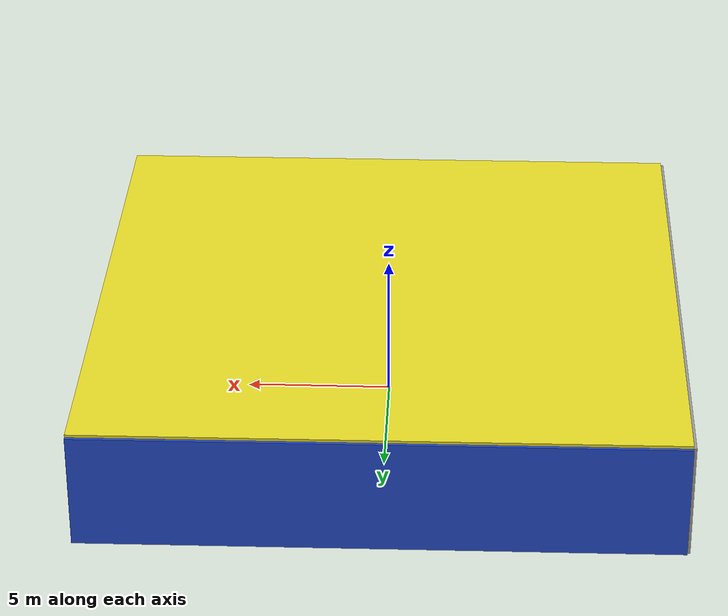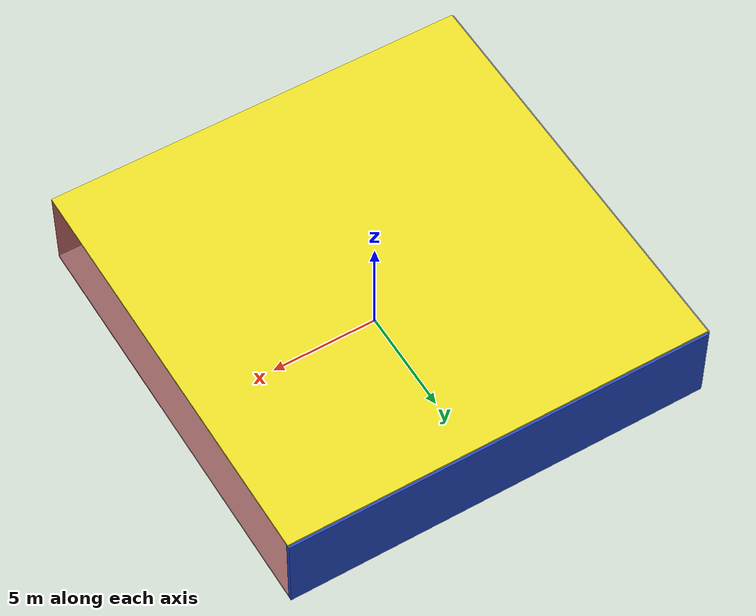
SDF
<sdf version="1.4">
 <world name="default">
  <physics type="ode">
   <max_step_size>0.001</max_step_size>
   <real_time_factor>1</real_time_factor>
   <real_time_update_rate>1000</real_time_update_rate>
   <gravity>0 0 -9.8</gravity>
  </physics>
  <scene><ambient>0.4 0.4 0.4 1</ambient><background>0.7 0.7 0.7 1</background><shadows>1</shadows></scene>
  <model name="Surrounding">
   <static>1</static>
   <link name="Ceiling">
    <collision name="Ceiling_Collision"><geometry><box><size>20 20 0.1</size></box></geometry></collision>
    <visual name="Ceiling_Visual">
     <geometry><box><size>20 20 0.1</size></box></geometry>
     <material>
      <script><uri>file://media/materials/scripts/gazebo.material</uri><name>Gazebo/YellowGlow</name></script>
     </material>
    </visual>
    <pose>0 0 4.05 0 0 0</pose>
   </link>
   <link name="Wall_South">
    <collision name="Wall_South_Collision">
     <geometry><box><size>20 0 4</size></box></geometry>
     <pose>0 0 2 0 -0 0</pose>
    </collision>
    <visual name="Wall_South_Visual">
     <pose>0 0 2 0 -0 0</pose>
     <geometry><box><size>20 0 4</size></box></geometry>
     <material>
      <script><uri>file://media/materials/scripts/gazebo.material</uri><name>Gazebo/LightOff</name></script>
     </material>
    </visual>
    <velocity_decay><linear>0</linear><angular>0</angular></velocity_decay>
    <pose>0 -10 0 0 -0 0</pose>
   </link>
   <link name="Wall_East">
    <collision name="Wall_21_Collision">
     <geometry><box><size>20 0 4</size></box></geometry>
     <pose>0 0 2 0 -0 0</pose>
    </collision>
    <visual name="Wall_21_Visual">
     <pose>0 0 2 0 -0 0</pose>
     <geometry><box><size>20 0 4</size></box></geometry>
     <material>
      <script><uri>file://media/materials/scripts/gazebo.material</uri><name>Gazebo/RedTransparent</name></script>
     </material>
    </visual>
    <velocity_decay><linear>0</linear><angular>0</angular></velocity_decay>
    <pose>10 0 0 0 -0 1.5708</pose>
   </link>
   <link name="Wall_North">
    <collision name="Wall_22_Collision">
     <geometry><box><size>20 0.2 4</size></box></geometry>
     <pose>0 0 2 0 -0 0</pose>
    </collision>
    <visual name="Wall_22_Visual">
     <pose>0 0 2 0 -0 0</pose>
     <geometry><box><size>20 0.2 4</size></box></geometry>
     <material>
      <script><uri>file://media/materials/scripts/gazebo.material</uri><name>Gazebo/Blue</name></script>
     </material>
    </visual>
    <velocity_decay><linear>0</linear><angular>0</angular></velocity_decay>
    <pose>0 10 0 0 -0 0</pose>
   </link>
   <link name="Wall_West">
    <collision name="Wall_23_Collision">
     <geometry><box><size>20 0.2 4</size></box></geometry>
     <pose>0 0 2 0 -0 0</pose>
    </collision>
    <visual name="Wall_23_Visual">
     <pose>0 0 2 0 -0 0</pose>
     <geometry><box><size>20 0.2 4</size></box></geometry>
     <material>
      <script><uri>file://media/materials/scripts/gazebo.material</uri><name>Gazebo/GreyGradientSky</name></script>
     </material>
    </visual>
    <velocity_decay><linear>0</linear><angular>0</angular></velocity_decay>
    <pose>-10 0 0 0 0 -1.5708</pose>
   </link>
   <link name="Ground_link">
    <collision name="collision">
     <pose>0 0 .05 0 -0 0</pose>
     <geometry><box><size>20 20 0.1</size></box></geometry>
    </collision>
    <visual name="visual">
     <pose>0 0 .05 0 -0 0</pose>
     <geometry><box><size>20 20 0.1</size></box></geometry>
     <material>
      <script><uri>file://media/materials/scripts/gazebo.material</uri><name>Gazebo/LightOff</name></script>
     </material>
    </visual>
   </link>
   <static>1</static>
  </model>
  <spherical_coordinates>
   <surface_model>EARTH_WGS84</surface_model>
   <latitude_deg>0</latitude_deg>
   <longitude_deg>0</longitude_deg>
   <elevation>0</elevation>
   <heading_deg>0</heading_deg>
  </spherical_coordinates>
  <light name="lightball_0" type="diffuse">
   <diffuse>0.8 0.8 0.8 1</diffuse>
   <specular>0.2 0.2 0.2 1</specular>
   <attenuation>
    <range>100</range>
    <constant>0.7</constant>
    <linear>0.01</linear>
    <quadratic>0.001</quadratic>
   </attenuation>
   <direction>-0.5 0.1 -0.9</direction>
   <pose>7.13588748797 -7.22535845816 2.92983441023 0 0 0</pose>
  </light>
  <light name="lightball_1" type="diffuse">
   <diffuse>0.8 0.8 0.8 1</diffuse>
   <specular>0.2 0.2 0.2 1</specular>
   <attenuation>
    <range>100</range>
    <constant>0.7</constant>
    <linear>0.01</linear>
    <quadratic>0.001</quadratic>
   </attenuation>
   <direction>-0.5 0.1 -0.9</direction>
   <pose>4.44197752137 -9.88030719759 2.58585465479 0 0 0</pose>
  </light>
  <light name="lightball_2" type="diffuse">
   <diffuse>0.8 0.8 0.8 1</diffuse>
   <specular>0.2 0.2 0.2 1</specular>
   <attenuation>
    <range>100</range>
    <constant>0.7</constant>
    <linear>0.01</linear>
    <quadratic>0.001</quadratic>
   </attenuation>
   <direction>-0.5 0.1 -0.9</direction>
   <pose>5.38565499797 -3.72919369086 1.92010386607 0 0 0</pose>
  </light>
  <include><uri>model://cabinet</uri><pose>-1.35443929207 -8.06561647655 0 0 0 1.04533866244</pose></include>
  <include>
   <uri>model://textured_shapes</uri>
   <pose>3.98019568238 5.26253528466 0 0 0 2.6386499735</pose>
  </include>
  <include>
   <uri>model://construction_cone</uri>
   <pose>7.73214996802 4.15730957264 0 0 0 2.04312441055</pose>
  </include>
 </world>
</sdf>

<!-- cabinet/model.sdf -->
<sdf version="1.5">
  <model name="cabinet">
    <static>true</static>
    <link name="cabinet_bottom_plate">
      <inertial>
        <pose>0 0 -1 0 0 0</pose>
        <inertia>
          <ixx>2.050000</ixx>
          <ixy>0</ixy>
          <ixz>0</ixz>
          <iyy>2.050000</iyy>
          <iyz>0</iyz>
          <izz>2.050000</izz>
        </inertia>
        <mass>25.000000</mass>
      </inertial>
      <collision name="cabinet_bottom_plate_geom">
        <pose>0 0 0.010000 0 0 0</pose>
        <geometry>
          <box>
            <size>0.450000 0.450000 0.020000</size>
          </box>
        </geometry>
      </collision>
      <visual name="cabinet_bottom_plate_geom_visual">
        <pose>0 0 0.010000 0 0 0</pose>
        <geometry>
          <box>
            <size>0.450000 0.450000 0.020000</size>
          </box>
        </geometry>
        <material>
          <script>
            <uri>model://media/materials/scripts/gazebo.material</uri>
            <name>Gazebo/Wood</name>
          </script>
        </material>
      </visual>
      <collision name="cabinet_bottom_plate_geom_cabinet_back_plate">
        <pose>0.235000 0 0.510000 0 0 0</pose>
        <geometry>
          <box>
            <size>0.020000 0.450000 1.020000</size>
          </box>
        </geometry>
      </collision>
      <visual name="cabinet_bottom_plate_geom_cabinet_back_plate_visual">
        <pose>0.235000 0 0.510000 0 0 0</pose>
        <geometry>
          <box>
            <size>0.020000 0.450000 1.020000</size>
          </box>
        </geometry>
        <material>
          <script>
            <uri>model://media/materials/scripts/gazebo.material</uri>
            <name>Gazebo/Wood</name>
          </script>
        </material>
      </visual>
      <collision name="cabinet_bottom_plate_geom_cabinet_left_plate">
        <pose>0 0.235000 0.510000 0 0 0</pose>
        <geometry>
          <box>
            <size>0.450000 0.020000 1.020000</size>
          </box>
        </geometry>
      </collision>
      <visual name="cabinet_bottom_plate_geom_cabinet_left_plate_visual">
        <pose>0 0.235000 0.510000 0 0 0</pose>
        <geometry>
          <box>
            <size>0.450000 0.020000 1.020000</size>
          </box>
        </geometry>
        <material>
          <script>
            <uri>model://media/materials/scripts/gazebo.material</uri>
            <name>Gazebo/Wood</name>
          </script>
        </material>
      </visual>
      <collision name="cabinet_bottom_plate_geom_cabinet_middle_plate">
        <pose>0 0 0.510000 0 0 0</pose>
        <geometry>
          <box>
            <size>0.450000 0.450000 0.020000</size>
          </box>
        </geometry>
      </collision>
      <visual name="cabinet_bottom_plate_geom_cabinet_middle_plate_visual">
        <pose>0 0 0.510000 0 0 0</pose>
        <geometry>
          <box>
            <size>0.450000 0.450000 0.020000</size>
          </box>
        </geometry>
        <material>
          <script>
            <uri>model://media/materials/scripts/gazebo.material</uri>
            <name>Gazebo/Wood</name>
          </script>
        </material>
      </visual>
      <collision name="cabinet_bottom_plate_geom_cabinet_right_plate">
        <pose>0 -0.235000 0.510000 0 0 0</pose>
        <geometry>
          <box>
            <size>0.450000 0.020000 1.020000</size>
          </box>
        </geometry>
      </collision>
      <visual name="cabinet_bottom_plate_geom_cabinet_right_plate_visual">
        <pose>0 -0.235000 0.510000 0 0 0</pose>
        <geometry>
          <box>
            <size>0.450000 0.020000 1.020000</size>
          </box>
        </geometry>
        <material>
          <script>
            <uri>model://media/materials/scripts/gazebo.material</uri>
            <name>Gazebo/Wood</name>
          </script>
        </material>
      </visual>
      <collision name="cabinet_bottom_plate_geom_cabinet_top_plate">
        <pose>0 0 1.010000 0 0 0</pose>
        <geometry>
          <box>
            <size>0.450000 0.450000 0.020000</size>
          </box>
        </geometry>
      </collision>
      <visual name="cabinet_bottom_plate_geom_cabinet_top_plate_visual">
        <pose>0 0 1.010000 0 0 0</pose>
        <geometry>
          <box>
            <size>0.450000 0.450000 0.020000</size>
          </box>
        </geometry>
        <material>
          <script>
            <uri>model://media/materials/scripts/gazebo.material</uri>
            <name>Gazebo/Wood</name>
          </script>
        </material>
      </visual>
    </link>
  </model>
</sdf>

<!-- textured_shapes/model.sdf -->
<sdf version="1.6">
  <model name="textured_shapes">
    <pose>0 0 0.5 0 0 0</pose>
    <link name="box">
      <pose>0 -1.5 0 0 0 0</pose>
      <collision name="collision">
        <geometry>
          <box>
            <size>1 1 1</size>
          </box>
        </geometry>
      </collision>
      <visual name="visual">
        <geometry>
          <box>
            <size>1 1 1</size>
          </box>
        </geometry>
        <material>
          <script>
            <uri>model://../model_source/models/textured_shapes/materials/scripts</uri>
            <uri>model://../model_source/models/textured_shapes/materials/textures</uri>
            <name>TexturedShape/Squares</name>
          </script>
        </material>
      </visual>
    </link>
    <link name="sphere">
      <collision name="collision">
        <geometry>
          <sphere>
            <radius>0.5</radius>
          </sphere>
        </geometry>
      </collision>
      <visual name="visual">
        <geometry>
          <sphere>
            <radius>0.5</radius>
          </sphere>
        </geometry>
        <material>
          <script>
            <uri>model://../model_source/models/textured_shapes/materials/scripts</uri>
            <uri>model://../model_source/models/textured_shapes/materials/textures</uri>
            <name>TexturedShape/Squares</name>
          </script>
        </material>
      </visual>
    </link>
    <link name="cylinder">
      <pose>0 1.5 0 0 0 0</pose>
      <collision name="collision">
        <geometry>
          <cylinder>
            <radius>0.5</radius>
            <length>1</length>
          </cylinder>
        </geometry>
      </collision>
      <visual name="visual">
        <geometry>
          <cylinder>
            <radius>0.5</radius>
            <length>1</length>
          </cylinder>
        </geometry>
        <material>
          <script>
            <uri>model://../model_source/models/textured_shapes/materials/scripts</uri>
            <uri>model://../model_source/models/textured_shapes/materials/textures</uri>
            <name>TexturedShape/Squares</name>
          </script>
        </material>
      </visual>
    </link>
  </model>
</sdf>

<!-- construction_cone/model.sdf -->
<sdf version="1.5">
  <model name="Construction Cone">
    <link name="link">
      <collision name="collision">
        <geometry>
          <mesh>
            <scale>10 10 10</scale>
            <uri>file://isr-testbed/construction_cone/meshes/construction_cone.dae</uri>
          </mesh>
        </geometry>
      </collision>
      <visual name="visual">
        <geometry>
          <mesh>
            <scale>10 10 10</scale>
            <uri>file://isr-testbed/construction_cone/meshes/construction_cone.dae</uri>
          </mesh>
        </geometry>
      </visual>
    </link>
  </model>
</sdf>
